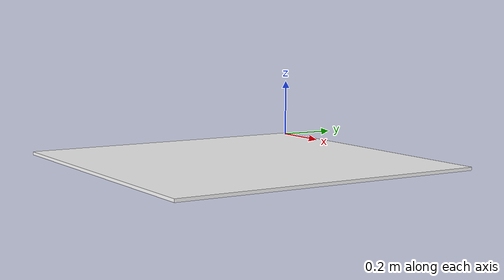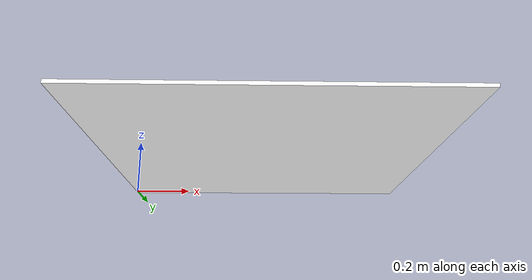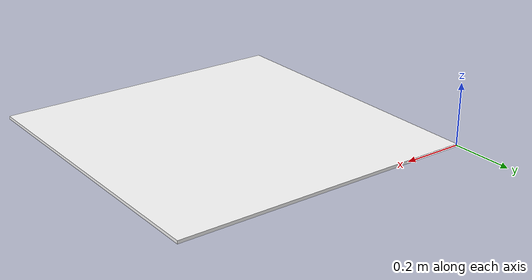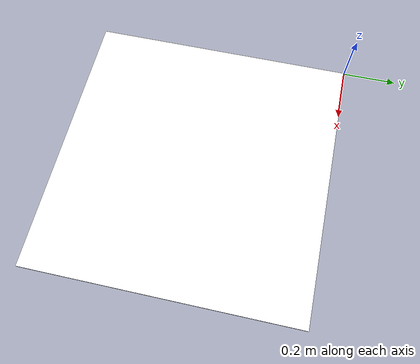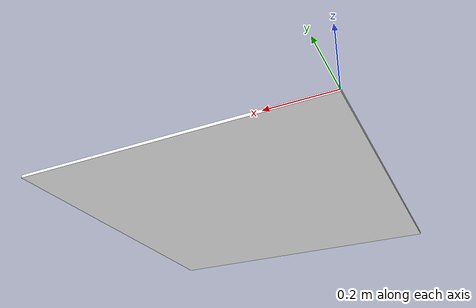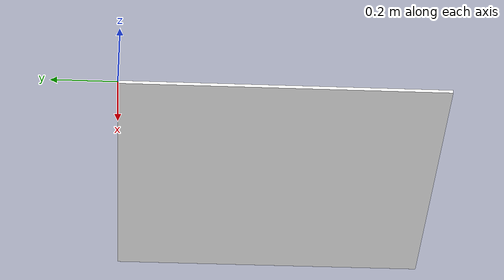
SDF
<?xml version="1.0"?>
<sdf version="1.9">
	<model name="qr_codeA">
		<static> true </static>
		<pose>0.5 -0.5 0 0 0 0</pose>
		<link name="link">
			<collision name='collision'>
				<geometry>
					<box>
						<size>1 1 0.01</size>
					</box>
				</geometry>
			</collision>

			<visual name="visual">
				<cast_shadows>false</cast_shadows>
				<geometry>
					<box>
						<size>1 1 0.01</size>
					</box>
				</geometry>
				<material>
					<diffuse>1.0 1.0 1.0</diffuse>
					<specular>1.0 1.0 1.0</specular>
					<pbr>
						<metal>
							<albedo_map>
								model://qr_codeA/materials/textures/qrcodea.png</albedo_map>
						</metal>
					</pbr>
				</material>
			</visual>
		</link>
	</model>
</sdf>
